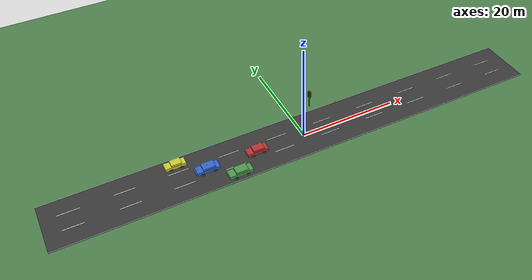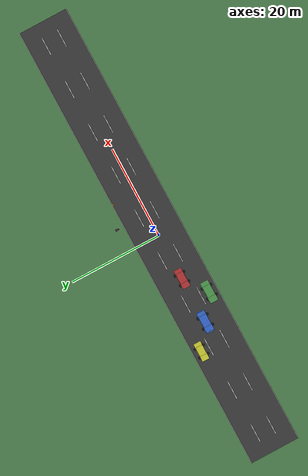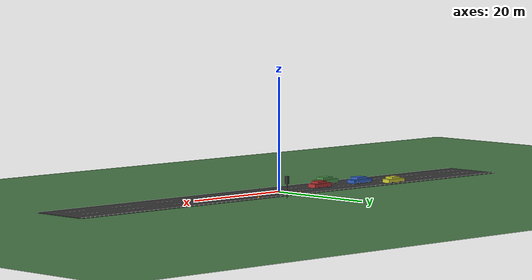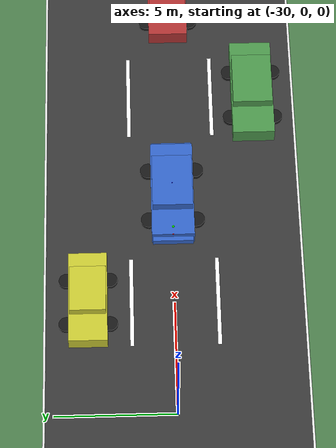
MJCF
<mujoco model="traffic_scene">
  <compiler angle="degree" coordinate="local" inertiafromgeom="true" autolimits="true"/>

  <option timestep="0.002" gravity="0 0 -9.81" iterations="50" ls_iterations="20">
    <flag warmstart="enable" contact="enable" override="enable"/>
  </option>

  <visual>
    <global offwidth="1920" offheight="1080"/>
    <quality shadowsize="4096"/>
    <map force="0.1" fogstart="10" fogend="100" znear="0.05"/>
    <headlight ambient="0.6 0.6 0.6" diffuse="0.8 0.8 0.8"/>
  </visual>

  <asset>
    <!-- 纹理定义 -->
    <texture name="asphalt" type="2d" builtin="checker" rgb1="0.2 0.2 0.2" rgb2="0.25 0.25 0.25" width="512" height="512"/>
    <material name="road" texture="asphalt" texrepeat="50 50" specular="0.1" shininess="0.1"/>

    <texture name="grass" type="2d" builtin="flat" rgb1="0.3 0.5 0.3" width="32" height="32"/>
    <material name="grass_mat" texture="grass" specular="0" shininess="0"/>

    <texture name="metal" type="2d" builtin="flat" rgb1="0.7 0.7 0.8" width="32" height="32"/>
    <material name="car_metal" texture="metal" specular="1" shininess="0.5" reflectance="0.3"/>

    <texture name="white" type="2d" builtin="flat" rgb1="1 1 1" width="32" height="32"/>
    <material name="white_mat" texture="white" specular="0.2" shininess="0.2"/>

    <texture name="red" type="2d" builtin="flat" rgb1="0.8 0.1 0.1" width="32" height="32"/>
    <material name="red_mat" texture="red"/>

    <texture name="yellow" type="2d" builtin="flat" rgb1="0.9 0.9 0.1" width="32" height="32"/>
    <material name="yellow_mat" texture="yellow"/>

    <texture name="green" type="2d" builtin="flat" rgb1="0.1 0.8 0.1" width="32" height="32"/>
    <material name="green_mat" texture="green"/>
  </asset>

  <default>
    <!-- 车辆默认配置 -->
    <default class="vehicle">
      <geom friction="0.9 0.5 0.5" condim="3" solimp="0.95 0.995 0.001" solref="0.002 1"/>
      <joint damping="0.5" frictionloss="0.1"/>
    </default>

    <!-- 轮胎配置 -->
    <default class="tire">
      <geom friction="1.2 0.8 0.5" condim="3" solimp="0.9 0.99 0.001" solref="0.004 1"/>
    </default>
  </default>

  <worldbody>
    <!-- 照明系统 -->
    <light directional="true" pos="0 0 20" dir="0 0 -1" diffuse="0.8 0.8 0.8"/>
    <light directional="true" pos="50 50 30" dir="-1 -1 -1" diffuse="0.4 0.4 0.4"/>
    <light directional="true" pos="-50 50 30" dir="1 -1 -1" diffuse="0.4 0.4 0.4"/>

    <!-- 地面（草地） -->
    <geom name="ground" type="plane" size="200 200 0.1" material="grass_mat" condim="3"/>

    <!-- 主路面（三车道高速公路，100米长） -->
    <geom name="main_road" type="box" size="50 5.4 0.05" pos="0 0 0.05" material="road" mass="10000"/>

    <!-- 车道线标记 -->
    <!-- 左边界（实线） -->
    <geom name="left_boundary" type="capsule" fromto="-50 5.4 0.12 50 5.4 0.12" size="0.05" rgba="1 1 1 1"/>

    <!-- 左车道线（虚线） -->
    <body name="lane_marker_left">
      <geom name="lm_l_1" type="box" size="2 0.08 0.01" pos="-45 1.8 0.12" rgba="1 1 1 1"/>
      <geom name="lm_l_2" type="box" size="2 0.08 0.01" pos="-35 1.8 0.12" rgba="1 1 1 1"/>
      <geom name="lm_l_3" type="box" size="2 0.08 0.01" pos="-25 1.8 0.12" rgba="1 1 1 1"/>
      <geom name="lm_l_4" type="box" size="2 0.08 0.01" pos="-15 1.8 0.12" rgba="1 1 1 1"/>
      <geom name="lm_l_5" type="box" size="2 0.08 0.01" pos="-5 1.8 0.12" rgba="1 1 1 1"/>
      <geom name="lm_l_6" type="box" size="2 0.08 0.01" pos="5 1.8 0.12" rgba="1 1 1 1"/>
      <geom name="lm_l_7" type="box" size="2 0.08 0.01" pos="15 1.8 0.12" rgba="1 1 1 1"/>
      <geom name="lm_l_8" type="box" size="2 0.08 0.01" pos="25 1.8 0.12" rgba="1 1 1 1"/>
      <geom name="lm_l_9" type="box" size="2 0.08 0.01" pos="35 1.8 0.12" rgba="1 1 1 1"/>
      <geom name="lm_l_10" type="box" size="2 0.08 0.01" pos="45 1.8 0.12" rgba="1 1 1 1"/>
    </body>

    <!-- 右车道线（虚线） -->
    <body name="lane_marker_right">
      <geom name="lm_r_1" type="box" size="2 0.08 0.01" pos="-45 -1.8 0.12" rgba="1 1 1 1"/>
      <geom name="lm_r_2" type="box" size="2 0.08 0.01" pos="-35 -1.8 0.12" rgba="1 1 1 1"/>
      <geom name="lm_r_3" type="box" size="2 0.08 0.01" pos="-25 -1.8 0.12" rgba="1 1 1 1"/>
      <geom name="lm_r_4" type="box" size="2 0.08 0.01" pos="-15 -1.8 0.12" rgba="1 1 1 1"/>
      <geom name="lm_r_5" type="box" size="2 0.08 0.01" pos="-5 -1.8 0.12" rgba="1 1 1 1"/>
      <geom name="lm_r_6" type="box" size="2 0.08 0.01" pos="5 -1.8 0.12" rgba="1 1 1 1"/>
      <geom name="lm_r_7" type="box" size="2 0.08 0.01" pos="15 -1.8 0.12" rgba="1 1 1 1"/>
      <geom name="lm_r_8" type="box" size="2 0.08 0.01" pos="25 -1.8 0.12" rgba="1 1 1 1"/>
      <geom name="lm_r_9" type="box" size="2 0.08 0.01" pos="35 -1.8 0.12" rgba="1 1 1 1"/>
      <geom name="lm_r_10" type="box" size="2 0.08 0.01" pos="45 -1.8 0.12" rgba="1 1 1 1"/>
    </body>

    <!-- 右边界（实线） -->
    <geom name="right_boundary" type="capsule" fromto="-50 -5.4 0.12 50 -5.4 0.12" size="0.05" rgba="1 1 1 1"/>

    <!-- 主车（自动驾驶车辆）- 详细动力学模型 -->
    <body name="ego_vehicle" pos="-20 0 0.3" childclass="vehicle">
      <!-- 自由关节允许6DOF运动 -->
      <freejoint/>

      <!-- 车身惯性 -->
      <inertial pos="0 0 0.1" mass="1500" diaginertia="600 2000 2200"/>

      <!-- 车身主体 -->
      <geom name="ego_chassis" type="box" size="2.2 0.9 0.4" pos="0 0 0.1" rgba="0.2 0.4 0.8 1" material="car_metal"/>

      <!-- 车顶 -->
      <geom name="ego_roof" type="box" size="1.2 0.85 0.3" pos="0.2 0 0.6" rgba="0.2 0.4 0.8 0.9"/>

      <!-- 引擎盖 -->
      <geom name="ego_hood" type="box" size="0.9 0.85 0.15" pos="-1.5 0 0.15" rgba="0.2 0.4 0.8 1"/>

      <!-- 后备箱 -->
      <geom name="ego_trunk" type="box" size="0.7 0.85 0.2" pos="1.6 0 0.2" rgba="0.2 0.4 0.8 1"/>

      <!-- 车轮系统 -->
      <!-- 左前轮 -->
      <body name="wheel_fl" pos="-1.2 1.0 -0.15" childclass="tire">
        <inertial pos="0 0 0" mass="20" diaginertia="1 1 1"/>
        <joint name="wheel_fl_steer" type="hinge" axis="0 0 1" range="-35 35" damping="5"/>
        <body name="wheel_fl_spin" pos="0 0 0">
          <inertial pos="0 0 0" mass="15" diaginertia="0.5 0.8 0.5"/>
          <joint name="wheel_fl_roll" type="hinge" axis="0 1 0" damping="0.5"/>
          <geom name="tire_fl" type="cylinder" size="0.35 0.12" rgba="0.1 0.1 0.1 1" friction="1.5 0.01 0.01"/>
          <site name="wheel_fl_contact" pos="0 0 -0.35" size="0.01"/>
        </body>
      </body>

      <!-- 右前轮 -->
      <body name="wheel_fr" pos="-1.2 -1.0 -0.15" childclass="tire">
        <inertial pos="0 0 0" mass="20" diaginertia="1 1 1"/>
        <joint name="wheel_fr_steer" type="hinge" axis="0 0 1" range="-35 35" damping="5"/>
        <body name="wheel_fr_spin" pos="0 0 0">
          <inertial pos="0 0 0" mass="15" diaginertia="0.5 0.8 0.5"/>
          <joint name="wheel_fr_roll" type="hinge" axis="0 1 0" damping="0.5"/>
          <geom name="tire_fr" type="cylinder" size="0.35 0.12" rgba="0.1 0.1 0.1 1" friction="1.5 0.01 0.01"/>
          <site name="wheel_fr_contact" pos="0 0 -0.35" size="0.01"/>
        </body>
      </body>

      <!-- 左后轮 -->
      <body name="wheel_rl" pos="1.2 1.0 -0.15" childclass="tire">
        <inertial pos="0 0 0" mass="15" diaginertia="0.5 0.8 0.5"/>
        <joint name="wheel_rl_roll" type="hinge" axis="0 1 0" damping="0.5"/>
        <geom name="tire_rl" type="cylinder" size="0.35 0.12" rgba="0.1 0.1 0.1 1" friction="1.5 0.01 0.01"/>
        <site name="wheel_rl_contact" pos="0 0 -0.35" size="0.01"/>
      </body>

      <!-- 右后轮 -->
      <body name="wheel_rr" pos="1.2 -1.0 -0.15" childclass="tire">
        <inertial pos="0 0 0" mass="15" diaginertia="0.5 0.8 0.5"/>
        <joint name="wheel_rr_roll" type="hinge" axis="0 1 0" damping="0.5"/>
        <geom name="tire_rr" type="cylinder" size="0.35 0.12" rgba="0.1 0.1 0.1 1" friction="1.5 0.01 0.01"/>
        <site name="wheel_rr_contact" pos="0 0 -0.35" size="0.01"/>
      </body>

      <!-- 传感器挂载点 -->
      <site name="lidar_mount" pos="-2 0 0.8" size="0.05" rgba="0 1 0 1"/>
      <site name="camera_front" pos="-2.2 0 0.5" size="0.03" rgba="1 0 0 1"/>
      <site name="imu_center" pos="0 0 0.2" size="0.02" rgba="1 1 0 1"/>
      <site name="gps_antenna" pos="0 0 1.0" size="0.02" rgba="0 0 1 1"/>
    </body>

    <!-- NPC车辆1（前方） -->
    <body name="npc_vehicle_1" pos="-10 0 0.3">
      <freejoint/>
      <inertial pos="0 0 0.1" mass="1400" diaginertia="550 1900 2100"/>
      <geom name="npc1_body" type="box" size="2.1 0.85 0.4" pos="0 0 0.1" rgba="0.7 0.2 0.2 1"/>
      <geom name="npc1_roof" type="box" size="1.1 0.8 0.3" pos="0.2 0 0.6" rgba="0.7 0.2 0.2 0.9"/>
      <!-- 简化轮胎 -->
      <geom name="npc1_wheel_fl" type="cylinder" size="0.33 0.11" pos="-1.1 0.95 -0.15" rgba="0.1 0.1 0.1 1" friction="1.3 0.01 0.01"/>
      <geom name="npc1_wheel_fr" type="cylinder" size="0.33 0.11" pos="-1.1 -0.95 -0.15" rgba="0.1 0.1 0.1 1" friction="1.3 0.01 0.01"/>
      <geom name="npc1_wheel_rl" type="cylinder" size="0.33 0.11" pos="1.1 0.95 -0.15" rgba="0.1 0.1 0.1 1" friction="1.3 0.01 0.01"/>
      <geom name="npc1_wheel_rr" type="cylinder" size="0.33 0.11" pos="1.1 -0.95 -0.15" rgba="0.1 0.1 0.1 1" friction="1.3 0.01 0.01"/>
    </body>

    <!-- NPC车辆2（右车道） -->
    <body name="npc_vehicle_2" pos="-15 -3.6 0.3">
      <freejoint/>
      <inertial pos="0 0 0.1" mass="1600" diaginertia="600 2000 2200"/>
      <geom name="npc2_body" type="box" size="2.3 0.9 0.45" pos="0 0 0.1" rgba="0.3 0.6 0.3 1"/>
      <geom name="npc2_roof" type="box" size="1.2 0.85 0.3" pos="0.2 0 0.65" rgba="0.3 0.6 0.3 0.9"/>
      <geom name="npc2_wheel_fl" type="cylinder" size="0.34 0.12" pos="-1.15 0.95 -0.15" rgba="0.1 0.1 0.1 1" friction="1.3 0.01 0.01"/>
      <geom name="npc2_wheel_fr" type="cylinder" size="0.34 0.12" pos="-1.15 -0.95 -0.15" rgba="0.1 0.1 0.1 1" friction="1.3 0.01 0.01"/>
      <geom name="npc2_wheel_rl" type="cylinder" size="0.34 0.12" pos="1.15 0.95 -0.15" rgba="0.1 0.1 0.1 1" friction="1.3 0.01 0.01"/>
      <geom name="npc2_wheel_rr" type="cylinder" size="0.34 0.12" pos="1.15 -0.95 -0.15" rgba="0.1 0.1 0.1 1" friction="1.3 0.01 0.01"/>
    </body>

    <!-- NPC车辆3（左车道） -->
    <body name="npc_vehicle_3" pos="-25 3.6 0.3">
      <freejoint/>
      <inertial pos="0 0 0.1" mass="1300" diaginertia="500 1800 2000"/>
      <geom name="npc3_body" type="box" size="2.0 0.8 0.38" pos="0 0 0.1" rgba="0.8 0.8 0.2 1"/>
      <geom name="npc3_roof" type="box" size="1.0 0.75 0.28" pos="0.2 0 0.58" rgba="0.8 0.8 0.2 0.9"/>
      <geom name="npc3_wheel_fl" type="cylinder" size="0.32 0.10" pos="-1.0 0.9 -0.15" rgba="0.1 0.1 0.1 1" friction="1.3 0.01 0.01"/>
      <geom name="npc3_wheel_fr" type="cylinder" size="0.32 0.10" pos="-1.0 -0.9 -0.15" rgba="0.1 0.1 0.1 1" friction="1.3 0.01 0.01"/>
      <geom name="npc3_wheel_rl" type="cylinder" size="0.32 0.10" pos="1.0 0.9 -0.15" rgba="0.1 0.1 0.1 1" friction="1.3 0.01 0.01"/>
      <geom name="npc3_wheel_rr" type="cylinder" size="0.32 0.10" pos="1.0 -0.9 -0.15" rgba="0.1 0.1 0.1 1" friction="1.3 0.01 0.01"/>
    </body>

    <!-- 交通信号灯 -->
    <body name="traffic_light" pos="5 7 0">
      <!-- 支柱 -->
      <geom name="light_pole" type="cylinder" size="0.1 3" rgba="0.3 0.3 0.3 1"/>
      <!-- 信号灯箱 -->
      <body name="light_box" pos="0 0 3">
        <geom name="light_housing" type="box" size="0.2 0.3 0.7" rgba="0.2 0.2 0.2 1"/>
        <!-- 红灯 -->
        <geom name="red_light" type="sphere" size="0.15" pos="0 -0.35 0.4" material="red_mat"/>
        <!-- 黄灯 -->
        <geom name="yellow_light" type="sphere" size="0.15" pos="0 -0.35 0" material="yellow_mat" rgba="0.3 0.3 0.1 1"/>
        <!-- 绿灯 -->
        <geom name="green_light" type="sphere" size="0.15" pos="0 -0.35 -0.4" material="green_mat"/>
      </body>
    </body>

    <!-- 路障/锥桶 -->
    <body name="cone_1" pos="0 5.2 0.15">
      <geom name="cone1_geom" type="cylinder" size="0.15 0.4" fromto="0 0 -0.15 0 0 0.4" rgba="1 0.5 0 1"/>
    </body>

    <body name="cone_2" pos="10 5.2 0.15">
      <geom name="cone2_geom" type="cylinder" size="0.15 0.4" fromto="0 0 -0.15 0 0 0.4" rgba="1 0.5 0 1"/>
    </body>
  </worldbody>

  <!-- 传感器系统 -->
  <sensor>
    <!-- 主车传感器 -->
    <!-- 位置和姿态 -->
    <framepos name="ego_position" objtype="site" objname="imu_center"/>
    <framequat name="ego_orientation" objtype="site" objname="imu_center"/>
    <framelinvel name="ego_linvel" objtype="site" objname="imu_center"/>
    <frameangvel name="ego_angvel" objtype="site" objname="imu_center"/>

    <!-- 加速度和陀螺仪 -->
    <accelerometer name="ego_accel" site="imu_center"/>
    <gyro name="ego_gyro" site="imu_center"/>

    <!-- 车轮转速传感器 -->
    <jointvel name="wheel_fl_speed" joint="wheel_fl_roll"/>
    <jointvel name="wheel_fr_speed" joint="wheel_fr_roll"/>
    <jointvel name="wheel_rl_speed" joint="wheel_rl_roll"/>
    <jointvel name="wheel_rr_speed" joint="wheel_rr_roll"/>

    <!-- 转向角传感器 -->
    <jointpos name="steer_fl_angle" joint="wheel_fl_steer"/>
    <jointpos name="steer_fr_angle" joint="wheel_fr_steer"/>

    <!-- 接触力传感器（轮胎） -->
    <touch name="contact_fl" site="wheel_fl_contact"/>
    <touch name="contact_fr" site="wheel_fr_contact"/>
    <touch name="contact_rl" site="wheel_rl_contact"/>
    <touch name="contact_rr" site="wheel_rr_contact"/>
  </sensor>

  <!-- 执行器系统 -->
  <actuator>
    <!-- 转向系统 -->
    <position name="steer_left" joint="wheel_fl_steer" kp="500" kv="50" ctrlrange="-0.61 0.61" forcerange="-200 200"/>
    <position name="steer_right" joint="wheel_fr_steer" kp="500" kv="50" ctrlrange="-0.61 0.61" forcerange="-200 200"/>

    <!-- 驱动系统（后轮驱动） -->
    <motor name="drive_left" joint="wheel_rl_roll" gear="1" ctrlrange="-500 500" ctrllimited="true"/>
    <motor name="drive_right" joint="wheel_rr_roll" gear="1" ctrlrange="-500 500" ctrllimited="true"/>
  </actuator>

</mujoco>
